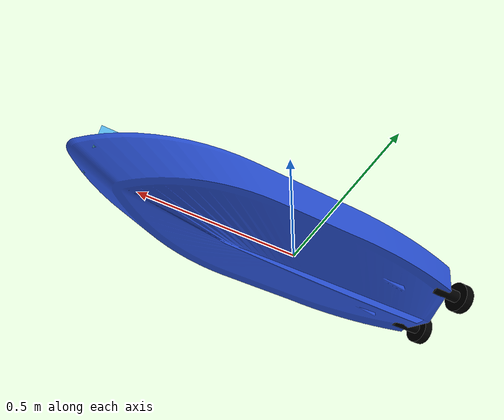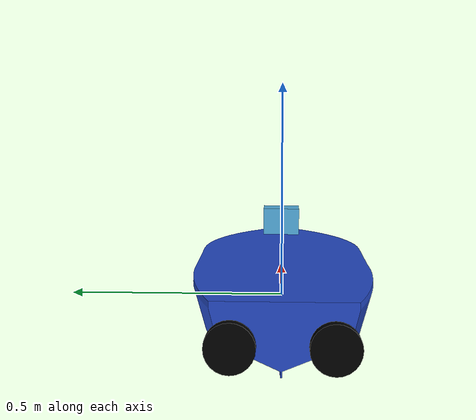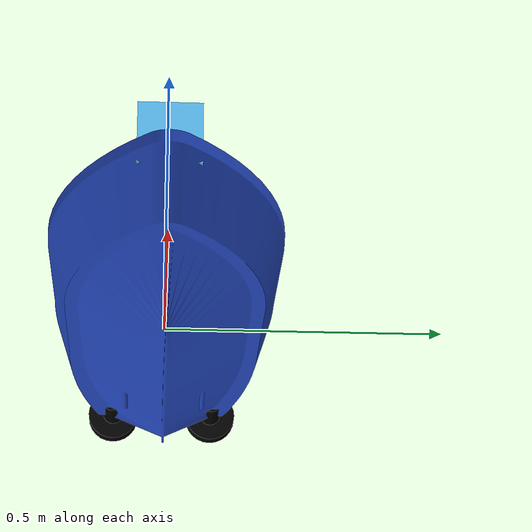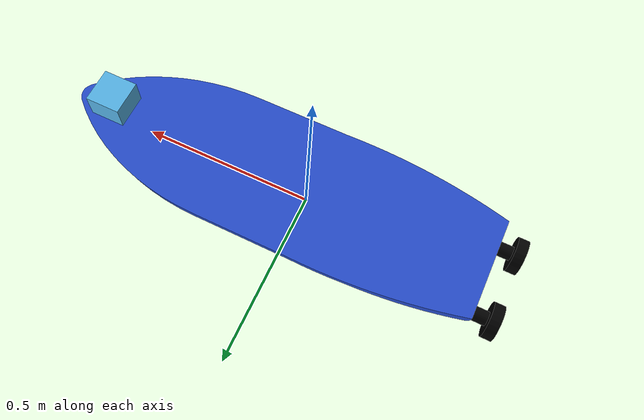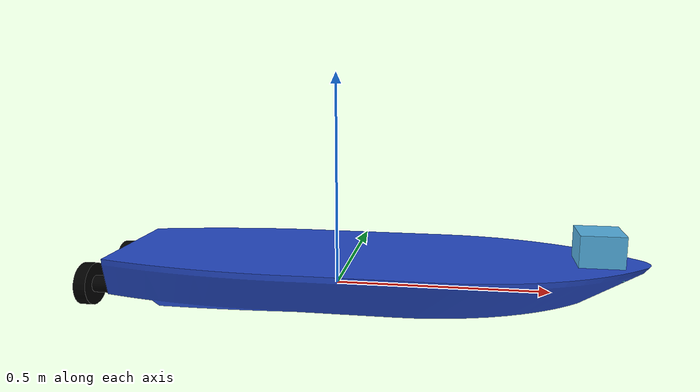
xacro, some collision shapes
<?xml version="1.0"?>

<!-- STL-version of the URDF, used with gazebo for dynamic simulation  -->

<robot name="boat_diff" xmlns:xacro="http://www.ros.org/wiki/xacro">

    <xacro:include filename="$(find usv_sim)/urdf/boat_common.xacro" />

    <!-- Plugin list -->
    <gazebo>
        <plugin name="freefloating_gazebo_control" filename="libfreefloating_gazebo_control.so">
            <switchService>switch</switchService>
            <updateRate>100</updateRate>
            <link>base_link</link>
            <thruster>
                <effort>30</effort>
                <name>fwd_left</name>
            </thruster>
        <thruster>
            <effort>30</effort>
            <name>fwd_right</name>
        </thruster>
        </plugin>
    </gazebo>

    <!-- Define two steering thrusters, with assumed force control in Z-direction -->
    <xacro:thruster_link name="fwd_left" xyz="-0.52 0.1 0" rpy="0 ${-PI/2} 0"/>
    <xacro:thruster_link name="fwd_right" xyz="-0.52 -0.1 0" rpy="0 ${-PI/2} 0"/>

</robot>

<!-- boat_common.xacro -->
<xacro xmlns:xacro="http://www.ros.org/wiki/xacro">

<xacro:property name="PI" value="3.1415926535897931"/>

<!-- Body properties -->
<xacro:property name="body_mass" value="5"/>
<xacro:property name="body_radius" value="0.13"/>
<xacro:property name="body_length" value="1.0" />
<xacro:property name="X_cog" value="${-0.5*body_radius}" />

<!-- Thruster constants -->
<xacro:property name="tr1" value=".02" />
<xacro:property name="tl1" value=".1" />
<xacro:property name="tr2" value=".05" />
<xacro:property name="tl2" value=".03" />
<xacro:property name="eps" value="0.00000001"/>

<link name="base_link">
    <visual>
      <origin rpy="1.57079632679 0 1.57079632679"/>
      <geometry>
        <mesh filename="file:///home/lsa/.uwsim/data/robot/barco/pt90.stl"/>
      </geometry>
      <material name="blue"/>
    </visual>
    <inertial>
        <origin rpy="0 0 0" xyz="0 0 -0.05"/>
      <mass value="10"/>
      <inertia ixx="0.1" ixy="0.0" ixz="0.0" iyy="1.4" iyz="0.0" izz="1.4"/>
    </inertial>
    <buoyancy>
      <compensation>1.2</compensation>
      <origin xyz="-0.0005 0 0.05"/>
      <limit radius="0.1"/>
      <damping rpy="20 50 50" xyz="20 50 50"/>
    </buoyancy>
</link>

<!-- Thruster link -->
<xacro:macro name="thruster_link" params="name xyz rpy">

    <joint name="${name}_link" type="revolute">
        <parent link="base_link"/>
        <child link="${name}"/>
        <origin rpy="${rpy}" xyz="${xyz}"/>
        <dynamics damping="10.0"/>
        <axis xyz="0 1 0"/>
        <limit effort="30" velocity="5.0" lower="-${PI/2}" upper="${PI/2}" />
    </joint>

    <link name="${name}">
        <buoyancy><compensation>1.0</compensation></buoyancy>
        <visual name="${name}_1">
            <geometry>
                <cylinder length="${tl1}" radius="${tr1}"/>
            </geometry>
            <material name="black">
                <color rgba="0 0 0 1"/>
            </material>
        </visual>
        <visual name="${name}_2">
            <origin xyz="0 0 ${(tl1+tl2)/2}"/>
            <geometry>
                <cylinder length="${tl2}" radius="${tr2}"/>
            </geometry>
            <material name="black">
                <color rgba="0 0 0 1"/>
            </material>
        </visual>
        <inertial>
            <mass value=".1"/>
            <inertia
                ixx=".1"
                ixy="0.0"
                ixz="0.0"
                iyy=".1"
                iyz="0.0"
                izz=".1"/>
        </inertial>
    </link>

    <gazebo reference="${name}">
        <material>Gazebo/Black</material>
    </gazebo>
</xacro:macro>

<xacro:macro name="thruster_dummy_link" params="name xyz rpy">
    <joint name="${name}" type="fixed">
        <parent link="base_link"/>
        <child link="${name}"/>
        <origin rpy="${rpy}" xyz="${xyz}"/>
    </joint>
    <link name="${name}"/>
</xacro:macro>

<!-- Sensors -->

<!-- Hokuyo Laser -->
<joint name="hokuyo_joint" type="fixed">
    <axis xyz="0 1 0" />
    <origin xyz="0.6 0 0.1" rpy="0 0 0"/>
    <parent link="base_link"/>
    <child link="hokuyo_link"/>
</joint>

<link name="hokuyo_link">
    <collision>
    <origin xyz="0 0 0" rpy="0 0 0"/>
    <geometry>
    <box size="0.1 0.1 0.1"/>
    </geometry>
    </collision>

    <visual>
    <origin xyz="0 0 0" rpy="0 0 0"/>
    <geometry>
    <mesh filename="package://usv_sim/meshes/hokuyo.dae"/>
    </geometry>
    </visual>

    <inertial>
    <mass value="1e-5" />
    <origin xyz="0 0 0" rpy="0 0 0"/>
    <inertia ixx="1e-6" ixy="0" ixz="0" iyy="1e-6" iyz="0" izz="1e-6" />
    </inertial>
</link>

<gazebo reference="hokuyo_link">
    <sensor type="gpu_ray" name="head_hokuyo_sensor">
    <pose>0 0 0 0 0 0</pose>
    <visualize>true</visualize>
    <update_rate>40</update_rate>
    <ray>
    <scan>
    <horizontal>
    <samples>720</samples>
    <resolution>1</resolution>
    <min_angle>-1.570796</min_angle>
    <max_angle>1.570796</max_angle>
    </horizontal>
    </scan>
    <range>
    <min>0.10</min>
    <max>30.0</max>
    <resolution>0.01</resolution>
    </range>
    <noise>
    <type>gaussian</type>
    <mean>0.0</mean>
    <stddev>0.01</stddev>
    </noise>
    </ray>
    <plugin name="gazebo_ros_head_hokuyo_controller" filename="libgazebo_ros_gpu_laser.so">
    <topicName>/scan</topicName>
    <frameName>base_laser</frameName>
    </plugin>
    </sensor>
</gazebo>

</xacro>
